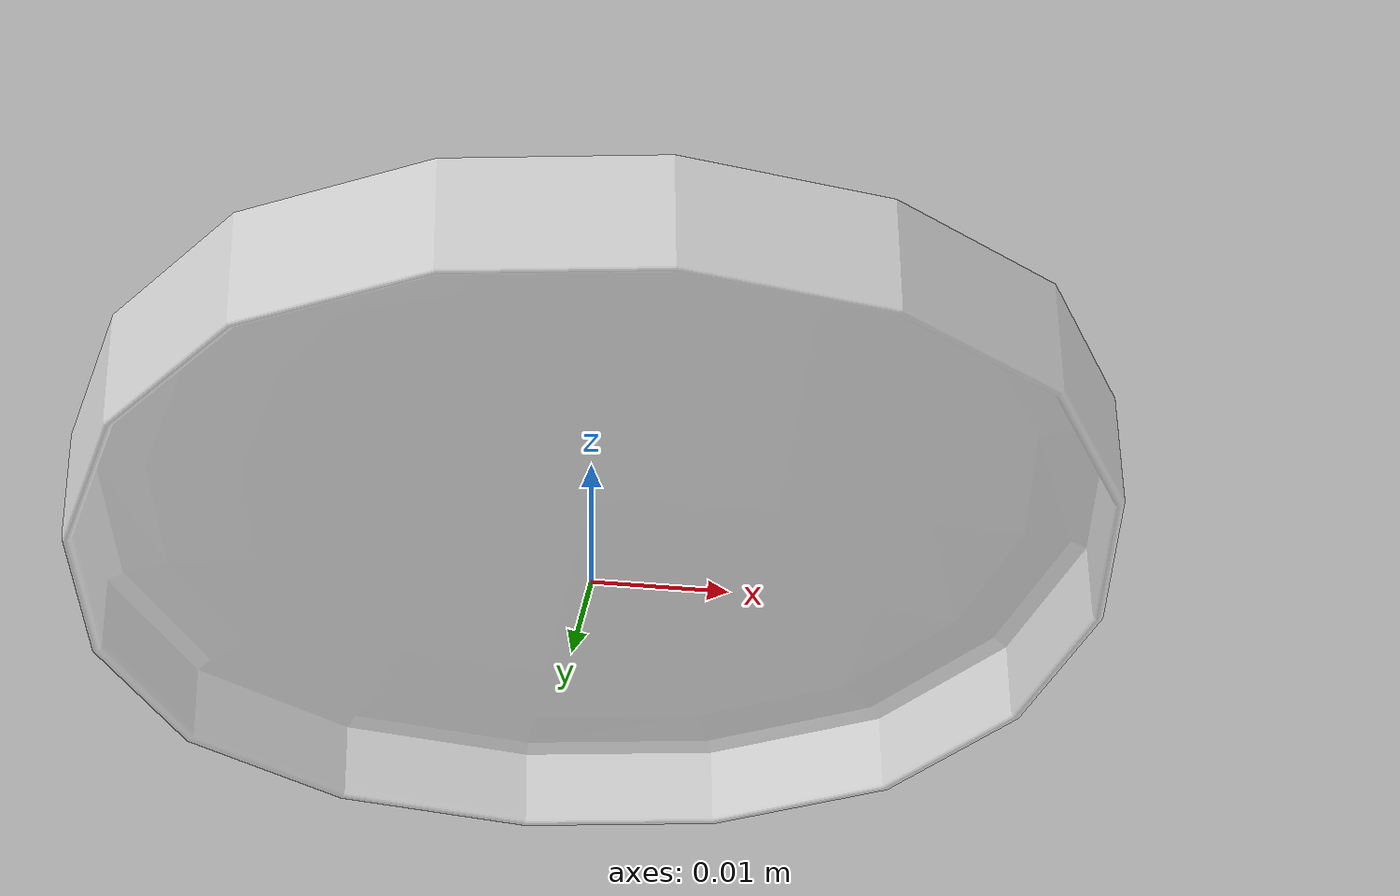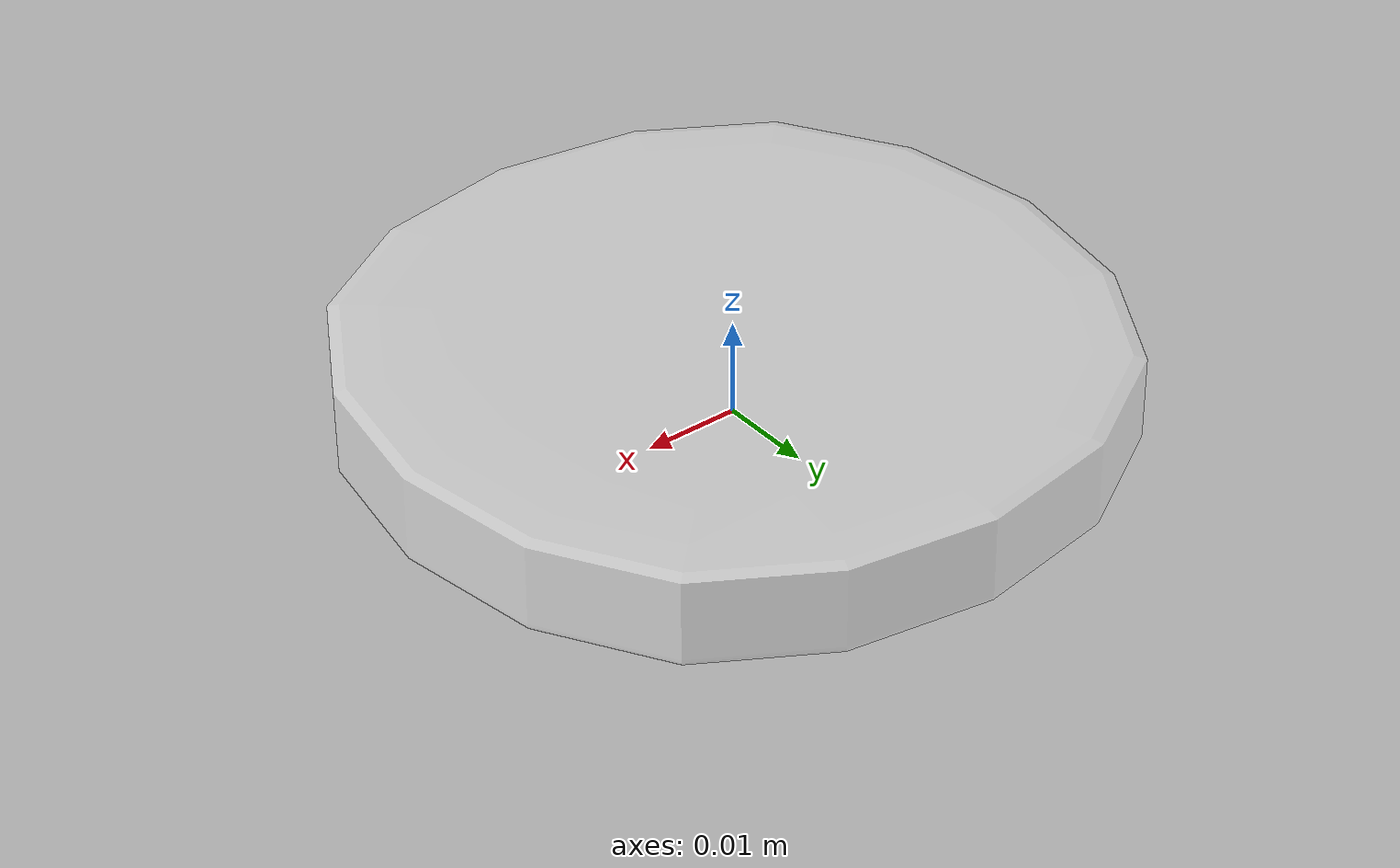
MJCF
<?xml version="1.0" ?>
<mujoco model="petri_dish_lid">
  <asset>
    <material name="petri_dish_material" specular="0.9" shininess="0.9" rgba="0.95 0.95 0.95 0.55"/>
    <mesh file="petri_dish/petri_dish.obj" scale="0.0127 0.0127 0.0127"/>
    <mesh file="petri_dish/petri_dish_collision_0.obj" scale="0.0127 0.0127 0.0127"/>
    <mesh file="petri_dish/petri_dish_collision_1.obj" scale="0.0127 0.0127 0.0127"/>
    <mesh file="petri_dish/petri_dish_collision_2.obj" scale="0.0127 0.0127 0.0127"/>
    <mesh file="petri_dish/petri_dish_collision_3.obj" scale="0.0127 0.0127 0.0127"/>
    <mesh file="petri_dish/petri_dish_collision_4.obj" scale="0.0127 0.0127 0.0127"/>
    <mesh file="petri_dish/petri_dish_collision_5.obj" scale="0.0127 0.0127 0.0127"/>
    <mesh file="petri_dish/petri_dish_collision_6.obj" scale="0.0127 0.0127 0.0127"/>
    <mesh file="petri_dish/petri_dish_collision_7.obj" scale="0.0127 0.0127 0.0127"/>
    <mesh file="petri_dish/petri_dish_collision_8.obj" scale="0.0127 0.0127 0.0127"/>
    <mesh file="petri_dish/petri_dish_collision_9.obj" scale="0.0127 0.0127 0.0127"/>
    <mesh file="petri_dish/petri_dish_collision_10.obj" scale="0.0127 0.0127 0.0127"/>
    <mesh file="petri_dish/petri_dish_collision_11.obj" scale="0.0127 0.0127 0.0127"/>
    <mesh file="petri_dish/petri_dish_collision_12.obj" scale="0.0127 0.0127 0.0127"/>
    <mesh file="petri_dish/petri_dish_collision_13.obj" scale="0.0127 0.0127 0.0127"/>
    <mesh file="petri_dish/petri_dish_collision_14.obj" scale="0.0127 0.0127 0.0127"/>
    <mesh file="petri_dish/petri_dish_collision_15.obj" scale="0.0127 0.0127 0.0127"/>
    <mesh file="petri_dish/petri_dish_collision_16.obj" scale="0.0127 0.0127 0.0127"/>
    <mesh file="petri_dish/petri_dish_collision_17.obj" scale="0.0127 0.0127 0.0127"/>
    <mesh file="petri_dish/petri_dish_collision_18.obj" scale="0.0127 0.0127 0.0127"/>
    <mesh file="petri_dish/petri_dish_collision_19.obj" scale="0.0127 0.0127 0.0127"/>
    <mesh file="petri_dish/petri_dish_collision_20.obj" scale="0.0127 0.0127 0.0127"/>
    <mesh file="petri_dish/petri_dish_collision_21.obj" scale="0.0127 0.0127 0.0127"/>
    <mesh file="petri_dish/petri_dish_collision_22.obj" scale="0.0127 0.0127 0.0127"/>
    <mesh file="petri_dish/petri_dish_collision_23.obj" scale="0.0127 0.0127 0.0127"/>
    <mesh file="petri_dish/petri_dish_collision_24.obj" scale="0.0127 0.0127 0.0127"/>
    <mesh file="petri_dish/petri_dish_collision_25.obj" scale="0.0127 0.0127 0.0127"/>
    <mesh file="petri_dish/petri_dish_collision_26.obj" scale="0.0127 0.0127 0.0127"/>
  </asset>
  <worldbody>
    <body name="petri_dish_lid">
      <inertial pos="0.000000 0.000000 0.007427" mass="0.02" diaginertia="0.0008 0.0008 0.0005"/>
      <geom material="petri_dish_material" mesh="petri_dish" class="visual"/>
      <geom mesh="petri_dish_collision_0"  class="collision"/>
      <geom mesh="petri_dish_collision_1"  class="collision"/>
      <geom mesh="petri_dish_collision_2"  class="collision"/>
      <geom mesh="petri_dish_collision_3"  class="collision"/>
      <geom mesh="petri_dish_collision_4"  class="collision"/>
      <geom mesh="petri_dish_collision_5"  class="collision"/>
      <geom mesh="petri_dish_collision_6"  class="collision"/>
      <geom mesh="petri_dish_collision_7"  class="collision"/>
      <geom mesh="petri_dish_collision_8"  class="collision"/>
      <geom mesh="petri_dish_collision_9"  class="collision"/>
      <geom mesh="petri_dish_collision_10"  class="collision"/>
      <geom mesh="petri_dish_collision_11"  class="collision"/>
      <geom mesh="petri_dish_collision_12"  class="collision"/>
      <geom mesh="petri_dish_collision_13"  class="collision"/>
      <geom mesh="petri_dish_collision_14"  class="collision"/>
      <geom mesh="petri_dish_collision_15"  class="collision"/>
      <geom mesh="petri_dish_collision_16"  class="collision"/>
      <geom mesh="petri_dish_collision_17"  class="collision"/>
      <geom mesh="petri_dish_collision_18"  class="collision"/>
      <geom mesh="petri_dish_collision_19"  class="collision"/>
      <geom mesh="petri_dish_collision_20"  class="collision"/>
      <geom mesh="petri_dish_collision_21"  class="collision"/>
      <geom mesh="petri_dish_collision_22"  class="collision"/>
      <geom mesh="petri_dish_collision_23"  class="collision"/>
      <geom mesh="petri_dish_collision_24"  class="collision"/>
      <geom mesh="petri_dish_collision_25"  class="collision"/>
      <geom mesh="petri_dish_collision_26"  class="collision"/>
      <site class="grasppoint" pos="0.00000 0.00000 0.00891"/>
      <site class="grasppoint" pos="0.00000 0.00000 0.01190"/>
      <site class="grasppoint" pos="0.00000 0.00000 0.01409"/>
    </body>
  </worldbody>
  <compiler boundmass="0.015" boundinertia="1e-05" angle="radian"/>
  <default>
    <default class="visual">
      <geom group="2" type="mesh" contype="0" conaffinity="0" density="50"/>
    </default>
    <default class="collision">
      <geom group="3" type="mesh" density="50" friction="1.5 0.1 0.1" solimp="0.9 0.95 0.001" solref="0.02 1"/>
    </default>
    <default class="grasppoint">
      <site type="sphere" size="0.005" group="4" rgba="0 0 1 1"/>
    </default>
  </default>
</mujoco>
